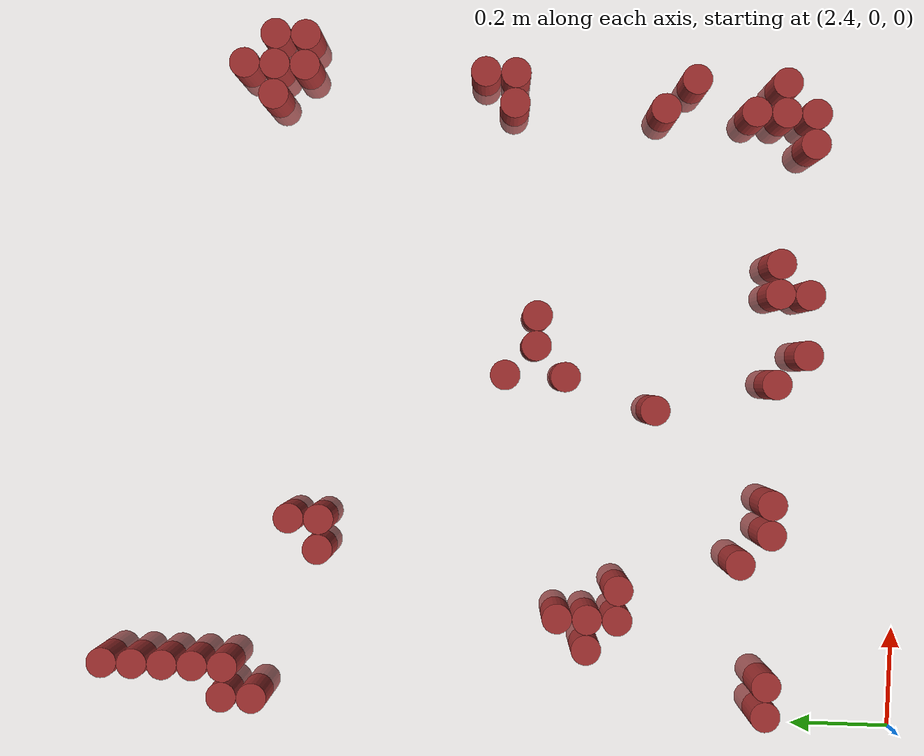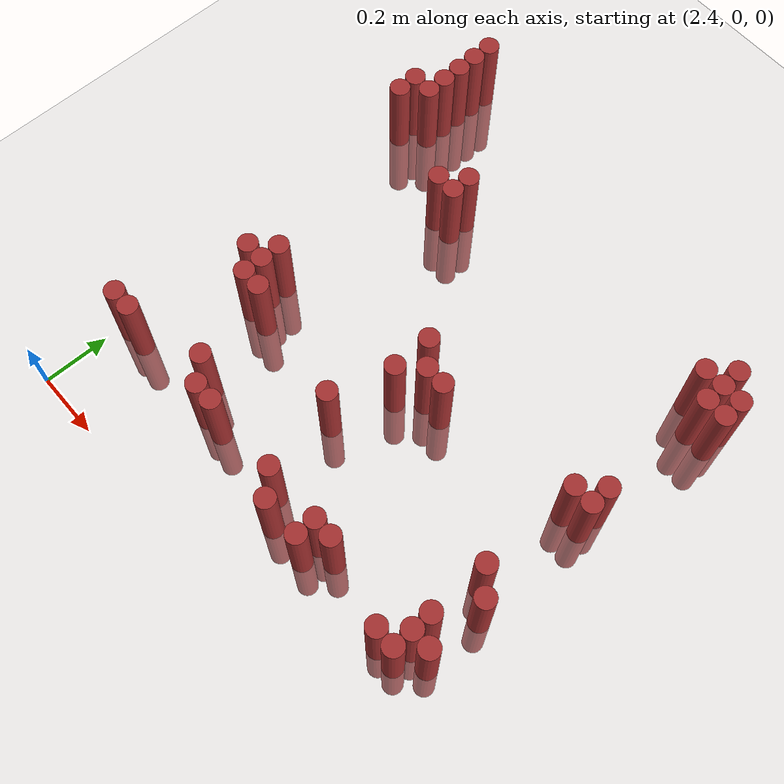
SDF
<sdf version="1.6">
 <world name="default">
  <model name="ground_plane">
   <static>1</static>
   <link name="link">
    <collision name="collision">
     <geometry><plane><normal>0 0 1</normal><size>100 100</size></plane></geometry>
     <surface><friction><ode><mu>100</mu><mu2>50</mu2></ode></friction></surface>
    </collision>
    <visual name="visual">
     <cast_shadows>0</cast_shadows>
     <geometry><plane><normal>0 0 1</normal><size>100 100</size></plane></geometry>
     <material>
      <script><uri>file://media/materials/scripts/gazebo.material</uri><name>Gazebo/Grey</name></script>
     </material>
    </visual>
   </link>
  </model>
  <model name="unit_cylinder_148">
   <static>1</static>
   <pose>2.490000 1.590000 0.000000 0.000000 0.000000 0.000000</pose>
   <link name="link">
    <inertial>
     <mass>1</mass>
     <inertia><ixx>0.145833</ixx><ixy>0</ixy><ixz>0</ixz><iyy>0.145833</iyy><iyz>0</iyz><izz>0.125</izz></inertia>
    </inertial>
    <collision name="collision">
     <geometry><cylinder><radius>0.030000</radius><length>0.5</length></cylinder></geometry>
    </collision>
    <visual name="visual">
     <geometry><cylinder><radius>0.030000</radius><length>0.5</length></cylinder></geometry>
     <material>
      <ambient>0.648000 0.192000 0.192000 1</ambient>
      <diffuse>0.648000 0.192000 0.192000 1</diffuse>
     </material>
     <material>
      <script><name>Gazebo/Grey</name><uri>file://media/materials/scripts/gazebo.material</uri></script>
     </material>
    </visual>
   </link>
  </model>
  <model name="unit_cylinder_158">
   <static>1</static>
   <pose>2.490000 1.530000 0.000000 0.000000 0.000000 0.000000</pose>
   <link name="link">
    <inertial>
     <mass>1</mass>
     <inertia><ixx>0.145833</ixx><ixy>0</ixy><ixz>0</ixz><iyy>0.145833</iyy><iyz>0</iyz><izz>0.125</izz></inertia>
    </inertial>
    <collision name="collision">
     <geometry><cylinder><radius>0.030000</radius><length>0.5</length></cylinder></geometry>
    </collision>
    <visual name="visual">
     <geometry><cylinder><radius>0.030000</radius><length>0.5</length></cylinder></geometry>
     <material>
      <ambient>0.648000 0.192000 0.192000 1</ambient>
      <diffuse>0.648000 0.192000 0.192000 1</diffuse>
     </material>
     <material>
      <script><name>Gazebo/Grey</name><uri>file://media/materials/scripts/gazebo.material</uri></script>
     </material>
    </visual>
   </link>
  </model>
  <model name="unit_cylinder_162">
   <static>1</static>
   <pose>2.490000 1.470000 0.000000 0.000000 0.000000 0.000000</pose>
   <link name="link">
    <inertial>
     <mass>1</mass>
     <inertia><ixx>0.145833</ixx><ixy>0</ixy><ixz>0</ixz><iyy>0.145833</iyy><iyz>0</iyz><izz>0.125</izz></inertia>
    </inertial>
    <collision name="collision">
     <geometry><cylinder><radius>0.030000</radius><length>0.5</length></cylinder></geometry>
    </collision>
    <visual name="visual">
     <geometry><cylinder><radius>0.030000</radius><length>0.5</length></cylinder></geometry>
     <material>
      <ambient>0.648000 0.192000 0.192000 1</ambient>
      <diffuse>0.648000 0.192000 0.192000 1</diffuse>
     </material>
     <material>
      <script><name>Gazebo/Grey</name><uri>file://media/materials/scripts/gazebo.material</uri></script>
     </material>
    </visual>
   </link>
  </model>
  <model name="unit_cylinder_166">
   <static>1</static>
   <pose>2.490000 1.410000 0.000000 0.000000 0.000000 0.000000</pose>
   <link name="link">
    <inertial>
     <mass>1</mass>
     <inertia><ixx>0.145833</ixx><ixy>0</ixy><ixz>0</ixz><iyy>0.145833</iyy><iyz>0</iyz><izz>0.125</izz></inertia>
    </inertial>
    <collision name="collision">
     <geometry><cylinder><radius>0.030000</radius><length>0.5</length></cylinder></geometry>
    </collision>
    <visual name="visual">
     <geometry><cylinder><radius>0.030000</radius><length>0.5</length></cylinder></geometry>
     <material>
      <ambient>0.648000 0.192000 0.192000 1</ambient>
      <diffuse>0.648000 0.192000 0.192000 1</diffuse>
     </material>
     <material>
      <script><name>Gazebo/Grey</name><uri>file://media/materials/scripts/gazebo.material</uri></script>
     </material>
    </visual>
   </link>
  </model>
  <model name="unit_cylinder_168">
   <static>1</static>
   <pose>2.430000 1.350000 0.000000 0.000000 0.000000 0.000000</pose>
   <link name="link">
    <inertial>
     <mass>1</mass>
     <inertia><ixx>0.145833</ixx><ixy>0</ixy><ixz>0</ixz><iyy>0.145833</iyy><iyz>0</iyz><izz>0.125</izz></inertia>
    </inertial>
    <collision name="collision">
     <geometry><cylinder><radius>0.030000</radius><length>0.5</length></cylinder></geometry>
    </collision>
    <visual name="visual">
     <geometry><cylinder><radius>0.030000</radius><length>0.5</length></cylinder></geometry>
     <material>
      <ambient>0.648000 0.192000 0.192000 1</ambient>
      <diffuse>0.648000 0.192000 0.192000 1</diffuse>
     </material>
     <material>
      <script><name>Gazebo/Grey</name><uri>file://media/materials/scripts/gazebo.material</uri></script>
     </material>
    </visual>
   </link>
  </model>
  <model name="unit_cylinder_169">
   <static>1</static>
   <pose>2.490000 1.350000 0.000000 0.000000 0.000000 0.000000</pose>
   <link name="link">
    <inertial>
     <mass>1</mass>
     <inertia><ixx>0.145833</ixx><ixy>0</ixy><ixz>0</ixz><iyy>0.145833</iyy><iyz>0</iyz><izz>0.125</izz></inertia>
    </inertial>
    <collision name="collision">
     <geometry><cylinder><radius>0.030000</radius><length>0.5</length></cylinder></geometry>
    </collision>
    <visual name="visual">
     <geometry><cylinder><radius>0.030000</radius><length>0.5</length></cylinder></geometry>
     <material>
      <ambient>0.648000 0.192000 0.192000 1</ambient>
      <diffuse>0.648000 0.192000 0.192000 1</diffuse>
     </material>
     <material>
      <script><name>Gazebo/Grey</name><uri>file://media/materials/scripts/gazebo.material</uri></script>
     </material>
    </visual>
   </link>
  </model>
  <model name="unit_cylinder_170">
   <static>1</static>
   <pose>3.690000 1.350000 0.000000 0.000000 0.000000 0.000000</pose>
   <link name="link">
    <inertial>
     <mass>1</mass>
     <inertia><ixx>0.145833</ixx><ixy>0</ixy><ixz>0</ixz><iyy>0.145833</iyy><iyz>0</iyz><izz>0.125</izz></inertia>
    </inertial>
    <collision name="collision">
     <geometry><cylinder><radius>0.030000</radius><length>0.5</length></cylinder></geometry>
    </collision>
    <visual name="visual">
     <geometry><cylinder><radius>0.030000</radius><length>0.5</length></cylinder></geometry>
     <material>
      <ambient>0.648000 0.192000 0.192000 1</ambient>
      <diffuse>0.648000 0.192000 0.192000 1</diffuse>
     </material>
     <material>
      <script><name>Gazebo/Grey</name><uri>file://media/materials/scripts/gazebo.material</uri></script>
     </material>
    </visual>
   </link>
  </model>
  <model name="unit_cylinder_171">
   <static>1</static>
   <pose>2.430000 1.290000 0.000000 0.000000 0.000000 0.000000</pose>
   <link name="link">
    <inertial>
     <mass>1</mass>
     <inertia><ixx>0.145833</ixx><ixy>0</ixy><ixz>0</ixz><iyy>0.145833</iyy><iyz>0</iyz><izz>0.125</izz></inertia>
    </inertial>
    <collision name="collision">
     <geometry><cylinder><radius>0.030000</radius><length>0.5</length></cylinder></geometry>
    </collision>
    <visual name="visual">
     <geometry><cylinder><radius>0.030000</radius><length>0.5</length></cylinder></geometry>
     <material>
      <ambient>0.648000 0.192000 0.192000 1</ambient>
      <diffuse>0.648000 0.192000 0.192000 1</diffuse>
     </material>
     <material>
      <script><name>Gazebo/Grey</name><uri>file://media/materials/scripts/gazebo.material</uri></script>
     </material>
    </visual>
   </link>
  </model>
  <model name="unit_cylinder_172">
   <static>1</static>
   <pose>3.630000 1.290000 0.000000 0.000000 0.000000 0.000000</pose>
   <link name="link">
    <inertial>
     <mass>1</mass>
     <inertia><ixx>0.145833</ixx><ixy>0</ixy><ixz>0</ixz><iyy>0.145833</iyy><iyz>0</iyz><izz>0.125</izz></inertia>
    </inertial>
    <collision name="collision">
     <geometry><cylinder><radius>0.030000</radius><length>0.5</length></cylinder></geometry>
    </collision>
    <visual name="visual">
     <geometry><cylinder><radius>0.030000</radius><length>0.5</length></cylinder></geometry>
     <material>
      <ambient>0.648000 0.192000 0.192000 1</ambient>
      <diffuse>0.648000 0.192000 0.192000 1</diffuse>
     </material>
     <material>
      <script><name>Gazebo/Grey</name><uri>file://media/materials/scripts/gazebo.material</uri></script>
     </material>
    </visual>
   </link>
  </model>
  <model name="unit_cylinder_173">
   <static>1</static>
   <pose>3.690000 1.290000 0.000000 0.000000 0.000000 0.000000</pose>
   <link name="link">
    <inertial>
     <mass>1</mass>
     <inertia><ixx>0.145833</ixx><ixy>0</ixy><ixz>0</ixz><iyy>0.145833</iyy><iyz>0</iyz><izz>0.125</izz></inertia>
    </inertial>
    <collision name="collision">
     <geometry><cylinder><radius>0.030000</radius><length>0.5</length></cylinder></geometry>
    </collision>
    <visual name="visual">
     <geometry><cylinder><radius>0.030000</radius><length>0.5</length></cylinder></geometry>
     <material>
      <ambient>0.648000 0.192000 0.192000 1</ambient>
      <diffuse>0.648000 0.192000 0.192000 1</diffuse>
     </material>
     <material>
      <script><name>Gazebo/Grey</name><uri>file://media/materials/scripts/gazebo.material</uri></script>
     </material>
    </visual>
   </link>
  </model>
  <model name="unit_cylinder_174">
   <static>1</static>
   <pose>3.750000 1.290000 0.000000 0.000000 0.000000 0.000000</pose>
   <link name="link">
    <inertial>
     <mass>1</mass>
     <inertia><ixx>0.145833</ixx><ixy>0</ixy><ixz>0</ixz><iyy>0.145833</iyy><iyz>0</iyz><izz>0.125</izz></inertia>
    </inertial>
    <collision name="collision">
     <geometry><cylinder><radius>0.030000</radius><length>0.5</length></cylinder></geometry>
    </collision>
    <visual name="visual">
     <geometry><cylinder><radius>0.030000</radius><length>0.5</length></cylinder></geometry>
     <material>
      <ambient>0.648000 0.192000 0.192000 1</ambient>
      <diffuse>0.648000 0.192000 0.192000 1</diffuse>
     </material>
     <material>
      <script><name>Gazebo/Grey</name><uri>file://media/materials/scripts/gazebo.material</uri></script>
     </material>
    </visual>
   </link>
  </model>
  <model name="unit_cylinder_175">
   <static>1</static>
   <pose>2.790000 1.230000 0.000000 0.000000 0.000000 0.000000</pose>
   <link name="link">
    <inertial>
     <mass>1</mass>
     <inertia><ixx>0.145833</ixx><ixy>0</ixy><ixz>0</ixz><iyy>0.145833</iyy><iyz>0</iyz><izz>0.125</izz></inertia>
    </inertial>
    <collision name="collision">
     <geometry><cylinder><radius>0.030000</radius><length>0.5</length></cylinder></geometry>
    </collision>
    <visual name="visual">
     <geometry><cylinder><radius>0.030000</radius><length>0.5</length></cylinder></geometry>
     <material>
      <ambient>0.648000 0.192000 0.192000 1</ambient>
      <diffuse>0.648000 0.192000 0.192000 1</diffuse>
     </material>
     <material>
      <script><name>Gazebo/Grey</name><uri>file://media/materials/scripts/gazebo.material</uri></script>
     </material>
    </visual>
   </link>
  </model>
  <model name="unit_cylinder_176">
   <static>1</static>
   <pose>3.690000 1.230000 0.000000 0.000000 0.000000 0.000000</pose>
   <link name="link">
    <inertial>
     <mass>1</mass>
     <inertia><ixx>0.145833</ixx><ixy>0</ixy><ixz>0</ixz><iyy>0.145833</iyy><iyz>0</iyz><izz>0.125</izz></inertia>
    </inertial>
    <collision name="collision">
     <geometry><cylinder><radius>0.030000</radius><length>0.5</length></cylinder></geometry>
    </collision>
    <visual name="visual">
     <geometry><cylinder><radius>0.030000</radius><length>0.5</length></cylinder></geometry>
     <material>
      <ambient>0.648000 0.192000 0.192000 1</ambient>
      <diffuse>0.648000 0.192000 0.192000 1</diffuse>
     </material>
     <material>
      <script><name>Gazebo/Grey</name><uri>file://media/materials/scripts/gazebo.material</uri></script>
     </material>
    </visual>
   </link>
  </model>
  <model name="unit_cylinder_177">
   <static>1</static>
   <pose>3.750000 1.230000 0.000000 0.000000 0.000000 0.000000</pose>
   <link name="link">
    <inertial>
     <mass>1</mass>
     <inertia><ixx>0.145833</ixx><ixy>0</ixy><ixz>0</ixz><iyy>0.145833</iyy><iyz>0</iyz><izz>0.125</izz></inertia>
    </inertial>
    <collision name="collision">
     <geometry><cylinder><radius>0.030000</radius><length>0.5</length></cylinder></geometry>
    </collision>
    <visual name="visual">
     <geometry><cylinder><radius>0.030000</radius><length>0.5</length></cylinder></geometry>
     <material>
      <ambient>0.648000 0.192000 0.192000 1</ambient>
      <diffuse>0.648000 0.192000 0.192000 1</diffuse>
     </material>
     <material>
      <script><name>Gazebo/Grey</name><uri>file://media/materials/scripts/gazebo.material</uri></script>
     </material>
    </visual>
   </link>
  </model>
  <model name="unit_cylinder_178">
   <static>1</static>
   <pose>2.730000 1.170000 0.000000 0.000000 0.000000 0.000000</pose>
   <link name="link">
    <inertial>
     <mass>1</mass>
     <inertia><ixx>0.145833</ixx><ixy>0</ixy><ixz>0</ixz><iyy>0.145833</iyy><iyz>0</iyz><izz>0.125</izz></inertia>
    </inertial>
    <collision name="collision">
     <geometry><cylinder><radius>0.030000</radius><length>0.5</length></cylinder></geometry>
    </collision>
    <visual name="visual">
     <geometry><cylinder><radius>0.030000</radius><length>0.5</length></cylinder></geometry>
     <material>
      <ambient>0.648000 0.192000 0.192000 1</ambient>
      <diffuse>0.648000 0.192000 0.192000 1</diffuse>
     </material>
     <material>
      <script><name>Gazebo/Grey</name><uri>file://media/materials/scripts/gazebo.material</uri></script>
     </material>
    </visual>
   </link>
  </model>
  <model name="unit_cylinder_179">
   <static>1</static>
   <pose>2.790000 1.170000 0.000000 0.000000 0.000000 0.000000</pose>
   <link name="link">
    <inertial>
     <mass>1</mass>
     <inertia><ixx>0.145833</ixx><ixy>0</ixy><ixz>0</ixz><iyy>0.145833</iyy><iyz>0</iyz><izz>0.125</izz></inertia>
    </inertial>
    <collision name="collision">
     <geometry><cylinder><radius>0.030000</radius><length>0.5</length></cylinder></geometry>
    </collision>
    <visual name="visual">
     <geometry><cylinder><radius>0.030000</radius><length>0.5</length></cylinder></geometry>
     <material>
      <ambient>0.648000 0.192000 0.192000 1</ambient>
      <diffuse>0.648000 0.192000 0.192000 1</diffuse>
     </material>
     <material>
      <script><name>Gazebo/Grey</name><uri>file://media/materials/scripts/gazebo.material</uri></script>
     </material>
    </visual>
   </link>
  </model>
  <model name="unit_cylinder_183">
   <static>1</static>
   <pose>3.690000 0.870000 0.000000 0.000000 0.000000 0.000000</pose>
   <link name="link">
    <inertial>
     <mass>1</mass>
     <inertia><ixx>0.145833</ixx><ixy>0</ixy><ixz>0</ixz><iyy>0.145833</iyy><iyz>0</iyz><izz>0.125</izz></inertia>
    </inertial>
    <collision name="collision">
     <geometry><cylinder><radius>0.030000</radius><length>0.5</length></cylinder></geometry>
    </collision>
    <visual name="visual">
     <geometry><cylinder><radius>0.030000</radius><length>0.5</length></cylinder></geometry>
     <material>
      <ambient>0.648000 0.192000 0.192000 1</ambient>
      <diffuse>0.648000 0.192000 0.192000 1</diffuse>
     </material>
     <material>
      <script><name>Gazebo/Grey</name><uri>file://media/materials/scripts/gazebo.material</uri></script>
     </material>
    </visual>
   </link>
  </model>
  <model name="unit_cylinder_184">
   <static>1</static>
   <pose>3.090000 0.810000 0.000000 0.000000 0.000000 0.000000</pose>
   <link name="link">
    <inertial>
     <mass>1</mass>
     <inertia><ixx>0.145833</ixx><ixy>0</ixy><ixz>0</ixz><iyy>0.145833</iyy><iyz>0</iyz><izz>0.125</izz></inertia>
    </inertial>
    <collision name="collision">
     <geometry><cylinder><radius>0.030000</radius><length>0.5</length></cylinder></geometry>
    </collision>
    <visual name="visual">
     <geometry><cylinder><radius>0.030000</radius><length>0.5</length></cylinder></geometry>
     <material>
      <ambient>0.648000 0.192000 0.192000 1</ambient>
      <diffuse>0.648000 0.192000 0.192000 1</diffuse>
     </material>
     <material>
      <script><name>Gazebo/Grey</name><uri>file://media/materials/scripts/gazebo.material</uri></script>
     </material>
    </visual>
   </link>
  </model>
  <model name="unit_cylinder_185">
   <static>1</static>
   <pose>3.630000 0.810000 0.000000 0.000000 0.000000 0.000000</pose>
   <link name="link">
    <inertial>
     <mass>1</mass>
     <inertia><ixx>0.145833</ixx><ixy>0</ixy><ixz>0</ixz><iyy>0.145833</iyy><iyz>0</iyz><izz>0.125</izz></inertia>
    </inertial>
    <collision name="collision">
     <geometry><cylinder><radius>0.030000</radius><length>0.5</length></cylinder></geometry>
    </collision>
    <visual name="visual">
     <geometry><cylinder><radius>0.030000</radius><length>0.5</length></cylinder></geometry>
     <material>
      <ambient>0.648000 0.192000 0.192000 1</ambient>
      <diffuse>0.648000 0.192000 0.192000 1</diffuse>
     </material>
     <material>
      <script><name>Gazebo/Grey</name><uri>file://media/materials/scripts/gazebo.material</uri></script>
     </material>
    </visual>
   </link>
  </model>
  <model name="unit_cylinder_186">
   <static>1</static>
   <pose>3.690000 0.810000 0.000000 0.000000 0.000000 0.000000</pose>
   <link name="link">
    <inertial>
     <mass>1</mass>
     <inertia><ixx>0.145833</ixx><ixy>0</ixy><ixz>0</ixz><iyy>0.145833</iyy><iyz>0</iyz><izz>0.125</izz></inertia>
    </inertial>
    <collision name="collision">
     <geometry><cylinder><radius>0.030000</radius><length>0.5</length></cylinder></geometry>
    </collision>
    <visual name="visual">
     <geometry><cylinder><radius>0.030000</radius><length>0.5</length></cylinder></geometry>
     <material>
      <ambient>0.648000 0.192000 0.192000 1</ambient>
      <diffuse>0.648000 0.192000 0.192000 1</diffuse>
     </material>
     <material>
      <script><name>Gazebo/Grey</name><uri>file://media/materials/scripts/gazebo.material</uri></script>
     </material>
    </visual>
   </link>
  </model>
  <model name="unit_cylinder_187">
   <static>1</static>
   <pose>3.150000 0.750000 0.000000 0.000000 0.000000 0.000000</pose>
   <link name="link">
    <inertial>
     <mass>1</mass>
     <inertia><ixx>0.145833</ixx><ixy>0</ixy><ixz>0</ixz><iyy>0.145833</iyy><iyz>0</iyz><izz>0.125</izz></inertia>
    </inertial>
    <collision name="collision">
     <geometry><cylinder><radius>0.030000</radius><length>0.5</length></cylinder></geometry>
    </collision>
    <visual name="visual">
     <geometry><cylinder><radius>0.030000</radius><length>0.5</length></cylinder></geometry>
     <material>
      <ambient>0.648000 0.192000 0.192000 1</ambient>
      <diffuse>0.648000 0.192000 0.192000 1</diffuse>
     </material>
     <material>
      <script><name>Gazebo/Grey</name><uri>file://media/materials/scripts/gazebo.material</uri></script>
     </material>
    </visual>
   </link>
  </model>
  <model name="unit_cylinder_188">
   <static>1</static>
   <pose>3.210000 0.750000 0.000000 0.000000 0.000000 0.000000</pose>
   <link name="link">
    <inertial>
     <mass>1</mass>
     <inertia><ixx>0.145833</ixx><ixy>0</ixy><ixz>0</ixz><iyy>0.145833</iyy><iyz>0</iyz><izz>0.125</izz></inertia>
    </inertial>
    <collision name="collision">
     <geometry><cylinder><radius>0.030000</radius><length>0.5</length></cylinder></geometry>
    </collision>
    <visual name="visual">
     <geometry><cylinder><radius>0.030000</radius><length>0.5</length></cylinder></geometry>
     <material>
      <ambient>0.648000 0.192000 0.192000 1</ambient>
      <diffuse>0.648000 0.192000 0.192000 1</diffuse>
     </material>
     <material>
      <script><name>Gazebo/Grey</name><uri>file://media/materials/scripts/gazebo.material</uri></script>
     </material>
    </visual>
   </link>
  </model>
  <model name="unit_cylinder_189">
   <static>1</static>
   <pose>2.610000 0.690000 0.000000 0.000000 0.000000 0.000000</pose>
   <link name="link">
    <inertial>
     <mass>1</mass>
     <inertia><ixx>0.145833</ixx><ixy>0</ixy><ixz>0</ixz><iyy>0.145833</iyy><iyz>0</iyz><izz>0.125</izz></inertia>
    </inertial>
    <collision name="collision">
     <geometry><cylinder><radius>0.030000</radius><length>0.5</length></cylinder></geometry>
    </collision>
    <visual name="visual">
     <geometry><cylinder><radius>0.030000</radius><length>0.5</length></cylinder></geometry>
     <material>
      <ambient>0.648000 0.192000 0.192000 1</ambient>
      <diffuse>0.648000 0.192000 0.192000 1</diffuse>
     </material>
     <material>
      <script><name>Gazebo/Grey</name><uri>file://media/materials/scripts/gazebo.material</uri></script>
     </material>
    </visual>
   </link>
  </model>
  <model name="unit_cylinder_190">
   <static>1</static>
   <pose>3.090000 0.690000 0.000000 0.000000 0.000000 0.000000</pose>
   <link name="link">
    <inertial>
     <mass>1</mass>
     <inertia><ixx>0.145833</ixx><ixy>0</ixy><ixz>0</ixz><iyy>0.145833</iyy><iyz>0</iyz><izz>0.125</izz></inertia>
    </inertial>
    <collision name="collision">
     <geometry><cylinder><radius>0.030000</radius><length>0.5</length></cylinder></geometry>
    </collision>
    <visual name="visual">
     <geometry><cylinder><radius>0.030000</radius><length>0.5</length></cylinder></geometry>
     <material>
      <ambient>0.648000 0.192000 0.192000 1</ambient>
      <diffuse>0.648000 0.192000 0.192000 1</diffuse>
     </material>
     <material>
      <script><name>Gazebo/Grey</name><uri>file://media/materials/scripts/gazebo.material</uri></script>
     </material>
    </visual>
   </link>
  </model>
  <model name="unit_cylinder_191">
   <static>1</static>
   <pose>2.550000 0.630000 0.000000 0.000000 0.000000 0.000000</pose>
   <link name="link">
    <inertial>
     <mass>1</mass>
     <inertia><ixx>0.145833</ixx><ixy>0</ixy><ixz>0</ixz><iyy>0.145833</iyy><iyz>0</iyz><izz>0.125</izz></inertia>
    </inertial>
    <collision name="collision">
     <geometry><cylinder><radius>0.030000</radius><length>0.5</length></cylinder></geometry>
    </collision>
    <visual name="visual">
     <geometry><cylinder><radius>0.030000</radius><length>0.5</length></cylinder></geometry>
     <material>
      <ambient>0.648000 0.192000 0.192000 1</ambient>
      <diffuse>0.648000 0.192000 0.192000 1</diffuse>
     </material>
     <material>
      <script><name>Gazebo/Grey</name><uri>file://media/materials/scripts/gazebo.material</uri></script>
     </material>
    </visual>
   </link>
  </model>
  <model name="unit_cylinder_192">
   <static>1</static>
   <pose>2.610000 0.630000 0.000000 0.000000 0.000000 0.000000</pose>
   <link name="link">
    <inertial>
     <mass>1</mass>
     <inertia><ixx>0.145833</ixx><ixy>0</ixy><ixz>0</ixz><iyy>0.145833</iyy><iyz>0</iyz><izz>0.125</izz></inertia>
    </inertial>
    <collision name="collision">
     <geometry><cylinder><radius>0.030000</radius><length>0.5</length></cylinder></geometry>
    </collision>
    <visual name="visual">
     <geometry><cylinder><radius>0.030000</radius><length>0.5</length></cylinder></geometry>
     <material>
      <ambient>0.648000 0.192000 0.192000 1</ambient>
      <diffuse>0.648000 0.192000 0.192000 1</diffuse>
     </material>
     <material>
      <script><name>Gazebo/Grey</name><uri>file://media/materials/scripts/gazebo.material</uri></script>
     </material>
    </visual>
   </link>
  </model>
  <model name="unit_cylinder_193">
   <static>1</static>
   <pose>2.610000 0.570000 0.000000 0.000000 0.000000 0.000000</pose>
   <link name="link">
    <inertial>
     <mass>1</mass>
     <inertia><ixx>0.145833</ixx><ixy>0</ixy><ixz>0</ixz><iyy>0.145833</iyy><iyz>0</iyz><izz>0.125</izz></inertia>
    </inertial>
    <collision name="collision">
     <geometry><cylinder><radius>0.030000</radius><length>0.5</length></cylinder></geometry>
    </collision>
    <visual name="visual">
     <geometry><cylinder><radius>0.030000</radius><length>0.5</length></cylinder></geometry>
     <material>
      <ambient>0.648000 0.192000 0.192000 1</ambient>
      <diffuse>0.648000 0.192000 0.192000 1</diffuse>
     </material>
     <material>
      <script><name>Gazebo/Grey</name><uri>file://media/materials/scripts/gazebo.material</uri></script>
     </material>
    </visual>
   </link>
  </model>
  <model name="unit_cylinder_194">
   <static>1</static>
   <pose>2.670000 0.570000 0.000000 0.000000 0.000000 0.000000</pose>
   <link name="link">
    <inertial>
     <mass>1</mass>
     <inertia><ixx>0.145833</ixx><ixy>0</ixy><ixz>0</ixz><iyy>0.145833</iyy><iyz>0</iyz><izz>0.125</izz></inertia>
    </inertial>
    <collision name="collision">
     <geometry><cylinder><radius>0.030000</radius><length>0.5</length></cylinder></geometry>
    </collision>
    <visual name="visual">
     <geometry><cylinder><radius>0.030000</radius><length>0.5</length></cylinder></geometry>
     <material>
      <ambient>0.648000 0.192000 0.192000 1</ambient>
      <diffuse>0.648000 0.192000 0.192000 1</diffuse>
     </material>
     <material>
      <script><name>Gazebo/Grey</name><uri>file://media/materials/scripts/gazebo.material</uri></script>
     </material>
    </visual>
   </link>
  </model>
  <model name="unit_cylinder_195">
   <static>1</static>
   <pose>3.030000 0.510000 0.000000 0.000000 0.000000 0.000000</pose>
   <link name="link">
    <inertial>
     <mass>1</mass>
     <inertia><ixx>0.145833</ixx><ixy>0</ixy><ixz>0</ixz><iyy>0.145833</iyy><iyz>0</iyz><izz>0.125</izz></inertia>
    </inertial>
    <collision name="collision">
     <geometry><cylinder><radius>0.030000</radius><length>0.5</length></cylinder></geometry>
    </collision>
    <visual name="visual">
     <geometry><cylinder><radius>0.030000</radius><length>0.5</length></cylinder></geometry>
     <material>
      <ambient>0.648000 0.192000 0.192000 1</ambient>
      <diffuse>0.648000 0.192000 0.192000 1</diffuse>
     </material>
     <material>
      <script><name>Gazebo/Grey</name><uri>file://media/materials/scripts/gazebo.material</uri></script>
     </material>
    </visual>
   </link>
  </model>
  <model name="unit_cylinder_196">
   <static>1</static>
   <pose>3.630000 0.510000 0.000000 0.000000 0.000000 0.000000</pose>
   <link name="link">
    <inertial>
     <mass>1</mass>
     <inertia><ixx>0.145833</ixx><ixy>0</ixy><ixz>0</ixz><iyy>0.145833</iyy><iyz>0</iyz><izz>0.125</izz></inertia>
    </inertial>
    <collision name="collision">
     <geometry><cylinder><radius>0.030000</radius><length>0.5</length></cylinder></geometry>
    </collision>
    <visual name="visual">
     <geometry><cylinder><radius>0.030000</radius><length>0.5</length></cylinder></geometry>
     <material>
      <ambient>0.648000 0.192000 0.192000 1</ambient>
      <diffuse>0.648000 0.192000 0.192000 1</diffuse>
     </material>
     <material>
      <script><name>Gazebo/Grey</name><uri>file://media/materials/scripts/gazebo.material</uri></script>
     </material>
    </visual>
   </link>
  </model>
  <model name="unit_cylinder_198">
   <static>1</static>
   <pose>3.690000 0.450000 0.000000 0.000000 0.000000 0.000000</pose>
   <link name="link">
    <inertial>
     <mass>1</mass>
     <inertia><ixx>0.145833</ixx><ixy>0</ixy><ixz>0</ixz><iyy>0.145833</iyy><iyz>0</iyz><izz>0.125</izz></inertia>
    </inertial>
    <collision name="collision">
     <geometry><cylinder><radius>0.030000</radius><length>0.5</length></cylinder></geometry>
    </collision>
    <visual name="visual">
     <geometry><cylinder><radius>0.030000</radius><length>0.5</length></cylinder></geometry>
     <material>
      <ambient>0.648000 0.192000 0.192000 1</ambient>
      <diffuse>0.648000 0.192000 0.192000 1</diffuse>
     </material>
     <material>
      <script><name>Gazebo/Grey</name><uri>file://media/materials/scripts/gazebo.material</uri></script>
     </material>
    </visual>
   </link>
  </model>
  <model name="unit_cylinder_208">
   <static>1</static>
   <pose>2.730000 0.330000 0.000000 0.000000 0.000000 0.000000</pose>
   <link name="link">
    <inertial>
     <mass>1</mass>
     <inertia><ixx>0.145833</ixx><ixy>0</ixy><ixz>0</ixz><iyy>0.145833</iyy><iyz>0</iyz><izz>0.125</izz></inertia>
    </inertial>
    <collision name="collision">
     <geometry><cylinder><radius>0.030000</radius><length>0.5</length></cylinder></geometry>
    </collision>
    <visual name="visual">
     <geometry><cylinder><radius>0.030000</radius><length>0.5</length></cylinder></geometry>
     <material>
      <ambient>0.648000 0.192000 0.192000 1</ambient>
      <diffuse>0.648000 0.192000 0.192000 1</diffuse>
     </material>
     <material>
      <script><name>Gazebo/Grey</name><uri>file://media/materials/scripts/gazebo.material</uri></script>
     </material>
    </visual>
   </link>
  </model>
  <model name="unit_cylinder_209">
   <static>1</static>
   <pose>3.630000 0.330000 0.000000 0.000000 0.000000 0.000000</pose>
   <link name="link">
    <inertial>
     <mass>1</mass>
     <inertia><ixx>0.145833</ixx><ixy>0</ixy><ixz>0</ixz><iyy>0.145833</iyy><iyz>0</iyz><izz>0.125</izz></inertia>
    </inertial>
    <collision name="collision">
     <geometry><cylinder><radius>0.030000</radius><length>0.5</length></cylinder></geometry>
    </collision>
    <visual name="visual">
     <geometry><cylinder><radius>0.030000</radius><length>0.5</length></cylinder></geometry>
     <material>
      <ambient>0.648000 0.192000 0.192000 1</ambient>
      <diffuse>0.648000 0.192000 0.192000 1</diffuse>
     </material>
     <material>
      <script><name>Gazebo/Grey</name><uri>file://media/materials/scripts/gazebo.material</uri></script>
     </material>
    </visual>
   </link>
  </model>
  <model name="unit_cylinder_210">
   <static>1</static>
   <pose>2.430000 0.270000 0.000000 0.000000 0.000000 0.000000</pose>
   <link name="link">
    <inertial>
     <mass>1</mass>
     <inertia><ixx>0.145833</ixx><ixy>0</ixy><ixz>0</ixz><iyy>0.145833</iyy><iyz>0</iyz><izz>0.125</izz></inertia>
    </inertial>
    <collision name="collision">
     <geometry><cylinder><radius>0.030000</radius><length>0.5</length></cylinder></geometry>
    </collision>
    <visual name="visual">
     <geometry><cylinder><radius>0.030000</radius><length>0.5</length></cylinder></geometry>
     <material>
      <ambient>0.648000 0.192000 0.192000 1</ambient>
      <diffuse>0.648000 0.192000 0.192000 1</diffuse>
     </material>
     <material>
      <script><name>Gazebo/Grey</name><uri>file://media/materials/scripts/gazebo.material</uri></script>
     </material>
    </visual>
   </link>
  </model>
  <model name="unit_cylinder_211">
   <static>1</static>
   <pose>2.490000 0.270000 0.000000 0.000000 0.000000 0.000000</pose>
   <link name="link">
    <inertial>
     <mass>1</mass>
     <inertia><ixx>0.145833</ixx><ixy>0</ixy><ixz>0</ixz><iyy>0.145833</iyy><iyz>0</iyz><izz>0.125</izz></inertia>
    </inertial>
    <collision name="collision">
     <geometry><cylinder><radius>0.030000</radius><length>0.5</length></cylinder></geometry>
    </collision>
    <visual name="visual">
     <geometry><cylinder><radius>0.030000</radius><length>0.5</length></cylinder></geometry>
     <material>
      <ambient>0.648000 0.192000 0.192000 1</ambient>
      <diffuse>0.648000 0.192000 0.192000 1</diffuse>
     </material>
     <material>
      <script><name>Gazebo/Grey</name><uri>file://media/materials/scripts/gazebo.material</uri></script>
     </material>
    </visual>
   </link>
  </model>
  <model name="unit_cylinder_212">
   <static>1</static>
   <pose>2.790000 0.270000 0.000000 0.000000 0.000000 0.000000</pose>
   <link name="link">
    <inertial>
     <mass>1</mass>
     <inertia><ixx>0.145833</ixx><ixy>0</ixy><ixz>0</ixz><iyy>0.145833</iyy><iyz>0</iyz><izz>0.125</izz></inertia>
    </inertial>
    <collision name="collision">
     <geometry><cylinder><radius>0.030000</radius><length>0.5</length></cylinder></geometry>
    </collision>
    <visual name="visual">
     <geometry><cylinder><radius>0.030000</radius><length>0.5</length></cylinder></geometry>
     <material>
      <ambient>0.648000 0.192000 0.192000 1</ambient>
      <diffuse>0.648000 0.192000 0.192000 1</diffuse>
     </material>
     <material>
      <script><name>Gazebo/Grey</name><uri>file://media/materials/scripts/gazebo.material</uri></script>
     </material>
    </visual>
   </link>
  </model>
  <model name="unit_cylinder_213">
   <static>1</static>
   <pose>2.850000 0.270000 0.000000 0.000000 0.000000 0.000000</pose>
   <link name="link">
    <inertial>
     <mass>1</mass>
     <inertia><ixx>0.145833</ixx><ixy>0</ixy><ixz>0</ixz><iyy>0.145833</iyy><iyz>0</iyz><izz>0.125</izz></inertia>
    </inertial>
    <collision name="collision">
     <geometry><cylinder><radius>0.030000</radius><length>0.5</length></cylinder></geometry>
    </collision>
    <visual name="visual">
     <geometry><cylinder><radius>0.030000</radius><length>0.5</length></cylinder></geometry>
     <material>
      <ambient>0.648000 0.192000 0.192000 1</ambient>
      <diffuse>0.648000 0.192000 0.192000 1</diffuse>
     </material>
     <material>
      <script><name>Gazebo/Grey</name><uri>file://media/materials/scripts/gazebo.material</uri></script>
     </material>
    </visual>
   </link>
  </model>
  <model name="unit_cylinder_214">
   <static>1</static>
   <pose>3.090000 0.270000 0.000000 0.000000 0.000000 0.000000</pose>
   <link name="link">
    <inertial>
     <mass>1</mass>
     <inertia><ixx>0.145833</ixx><ixy>0</ixy><ixz>0</ixz><iyy>0.145833</iyy><iyz>0</iyz><izz>0.125</izz></inertia>
    </inertial>
    <collision name="collision">
     <geometry><cylinder><radius>0.030000</radius><length>0.5</length></cylinder></geometry>
    </collision>
    <visual name="visual">
     <geometry><cylinder><radius>0.030000</radius><length>0.5</length></cylinder></geometry>
     <material>
      <ambient>0.648000 0.192000 0.192000 1</ambient>
      <diffuse>0.648000 0.192000 0.192000 1</diffuse>
     </material>
     <material>
      <script><name>Gazebo/Grey</name><uri>file://media/materials/scripts/gazebo.material</uri></script>
     </material>
    </visual>
   </link>
  </model>
  <model name="unit_cylinder_215">
   <static>1</static>
   <pose>3.270000 0.270000 0.000000 0.000000 0.000000 0.000000</pose>
   <link name="link">
    <inertial>
     <mass>1</mass>
     <inertia><ixx>0.145833</ixx><ixy>0</ixy><ixz>0</ixz><iyy>0.145833</iyy><iyz>0</iyz><izz>0.125</izz></inertia>
    </inertial>
    <collision name="collision">
     <geometry><cylinder><radius>0.030000</radius><length>0.5</length></cylinder></geometry>
    </collision>
    <visual name="visual">
     <geometry><cylinder><radius>0.030000</radius><length>0.5</length></cylinder></geometry>
     <material>
      <ambient>0.648000 0.192000 0.192000 1</ambient>
      <diffuse>0.648000 0.192000 0.192000 1</diffuse>
     </material>
     <material>
      <script><name>Gazebo/Grey</name><uri>file://media/materials/scripts/gazebo.material</uri></script>
     </material>
    </visual>
   </link>
  </model>
  <model name="unit_cylinder_216">
   <static>1</static>
   <pose>3.330000 0.270000 0.000000 0.000000 0.000000 0.000000</pose>
   <link name="link">
    <inertial>
     <mass>1</mass>
     <inertia><ixx>0.145833</ixx><ixy>0</ixy><ixz>0</ixz><iyy>0.145833</iyy><iyz>0</iyz><izz>0.125</izz></inertia>
    </inertial>
    <collision name="collision">
     <geometry><cylinder><radius>0.030000</radius><length>0.5</length></cylinder></geometry>
    </collision>
    <visual name="visual">
     <geometry><cylinder><radius>0.030000</radius><length>0.5</length></cylinder></geometry>
     <material>
      <ambient>0.648000 0.192000 0.192000 1</ambient>
      <diffuse>0.648000 0.192000 0.192000 1</diffuse>
     </material>
     <material>
      <script><name>Gazebo/Grey</name><uri>file://media/materials/scripts/gazebo.material</uri></script>
     </material>
    </visual>
   </link>
  </model>
  <model name="unit_cylinder_217">
   <static>1</static>
   <pose>3.630000 0.270000 0.000000 0.000000 0.000000 0.000000</pose>
   <link name="link">
    <inertial>
     <mass>1</mass>
     <inertia><ixx>0.145833</ixx><ixy>0</ixy><ixz>0</ixz><iyy>0.145833</iyy><iyz>0</iyz><izz>0.125</izz></inertia>
    </inertial>
    <collision name="collision">
     <geometry><cylinder><radius>0.030000</radius><length>0.5</length></cylinder></geometry>
    </collision>
    <visual name="visual">
     <geometry><cylinder><radius>0.030000</radius><length>0.5</length></cylinder></geometry>
     <material>
      <ambient>0.648000 0.192000 0.192000 1</ambient>
      <diffuse>0.648000 0.192000 0.192000 1</diffuse>
     </material>
     <material>
      <script><name>Gazebo/Grey</name><uri>file://media/materials/scripts/gazebo.material</uri></script>
     </material>
    </visual>
   </link>
  </model>
  <model name="unit_cylinder_218">
   <static>1</static>
   <pose>3.690000 0.270000 0.000000 0.000000 0.000000 0.000000</pose>
   <link name="link">
    <inertial>
     <mass>1</mass>
     <inertia><ixx>0.145833</ixx><ixy>0</ixy><ixz>0</ixz><iyy>0.145833</iyy><iyz>0</iyz><izz>0.125</izz></inertia>
    </inertial>
    <collision name="collision">
     <geometry><cylinder><radius>0.030000</radius><length>0.5</length></cylinder></geometry>
    </collision>
    <visual name="visual">
     <geometry><cylinder><radius>0.030000</radius><length>0.5</length></cylinder></geometry>
     <material>
      <ambient>0.648000 0.192000 0.192000 1</ambient>
      <diffuse>0.648000 0.192000 0.192000 1</diffuse>
     </material>
     <material>
      <script><name>Gazebo/Grey</name><uri>file://media/materials/scripts/gazebo.material</uri></script>
     </material>
    </visual>
   </link>
  </model>
  <model name="unit_cylinder_221">
   <static>1</static>
   <pose>3.150000 0.210000 0.000000 0.000000 0.000000 0.000000</pose>
   <link name="link">
    <inertial>
     <mass>1</mass>
     <inertia><ixx>0.145833</ixx><ixy>0</ixy><ixz>0</ixz><iyy>0.145833</iyy><iyz>0</iyz><izz>0.125</izz></inertia>
    </inertial>
    <collision name="collision">
     <geometry><cylinder><radius>0.030000</radius><length>0.5</length></cylinder></geometry>
    </collision>
    <visual name="visual">
     <geometry><cylinder><radius>0.030000</radius><length>0.5</length></cylinder></geometry>
     <material>
      <ambient>0.648000 0.192000 0.192000 1</ambient>
      <diffuse>0.648000 0.192000 0.192000 1</diffuse>
     </material>
     <material>
      <script><name>Gazebo/Grey</name><uri>file://media/materials/scripts/gazebo.material</uri></script>
     </material>
    </visual>
   </link>
  </model>
  <model name="unit_cylinder_222">
   <static>1</static>
   <pose>3.270000 0.210000 0.000000 0.000000 0.000000 0.000000</pose>
   <link name="link">
    <inertial>
     <mass>1</mass>
     <inertia><ixx>0.145833</ixx><ixy>0</ixy><ixz>0</ixz><iyy>0.145833</iyy><iyz>0</iyz><izz>0.125</izz></inertia>
    </inertial>
    <collision name="collision">
     <geometry><cylinder><radius>0.030000</radius><length>0.5</length></cylinder></geometry>
    </collision>
    <visual name="visual">
     <geometry><cylinder><radius>0.030000</radius><length>0.5</length></cylinder></geometry>
     <material>
      <ambient>0.648000 0.192000 0.192000 1</ambient>
      <diffuse>0.648000 0.192000 0.192000 1</diffuse>
     </material>
     <material>
      <script><name>Gazebo/Grey</name><uri>file://media/materials/scripts/gazebo.material</uri></script>
     </material>
    </visual>
   </link>
  </model>
  <model name="unit_cylinder_223">
   <static>1</static>
   <pose>3.570000 0.210000 0.000000 0.000000 0.000000 0.000000</pose>
   <link name="link">
    <inertial>
     <mass>1</mass>
     <inertia><ixx>0.145833</ixx><ixy>0</ixy><ixz>0</ixz><iyy>0.145833</iyy><iyz>0</iyz><izz>0.125</izz></inertia>
    </inertial>
    <collision name="collision">
     <geometry><cylinder><radius>0.030000</radius><length>0.5</length></cylinder></geometry>
    </collision>
    <visual name="visual">
     <geometry><cylinder><radius>0.030000</radius><length>0.5</length></cylinder></geometry>
     <material>
      <ambient>0.648000 0.192000 0.192000 1</ambient>
      <diffuse>0.648000 0.192000 0.192000 1</diffuse>
     </material>
     <material>
      <script><name>Gazebo/Grey</name><uri>file://media/materials/scripts/gazebo.material</uri></script>
     </material>
    </visual>
   </link>
  </model>
  <model name="unit_cylinder_224">
   <static>1</static>
   <pose>3.630000 0.210000 0.000000 0.000000 0.000000 0.000000</pose>
   <link name="link">
    <inertial>
     <mass>1</mass>
     <inertia><ixx>0.145833</ixx><ixy>0</ixy><ixz>0</ixz><iyy>0.145833</iyy><iyz>0</iyz><izz>0.125</izz></inertia>
    </inertial>
    <collision name="collision">
     <geometry><cylinder><radius>0.030000</radius><length>0.5</length></cylinder></geometry>
    </collision>
    <visual name="visual">
     <geometry><cylinder><radius>0.030000</radius><length>0.5</length></cylinder></geometry>
     <material>
      <ambient>0.648000 0.192000 0.192000 1</ambient>
      <diffuse>0.648000 0.192000 0.192000 1</diffuse>
     </material>
     <material>
      <script><name>Gazebo/Grey</name><uri>file://media/materials/scripts/gazebo.material</uri></script>
     </material>
    </visual>
   </link>
  </model>
 </world>
</sdf>
